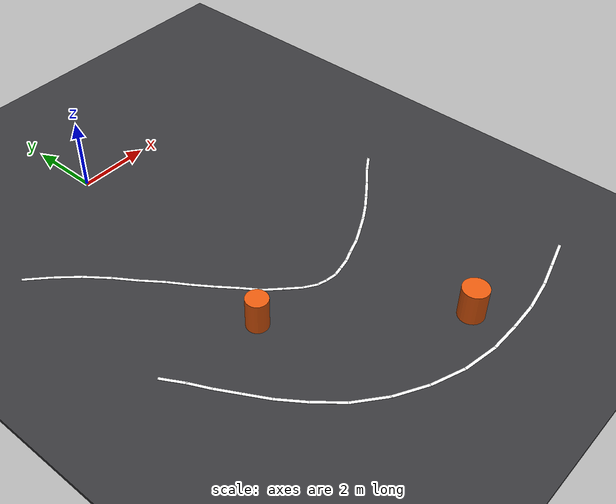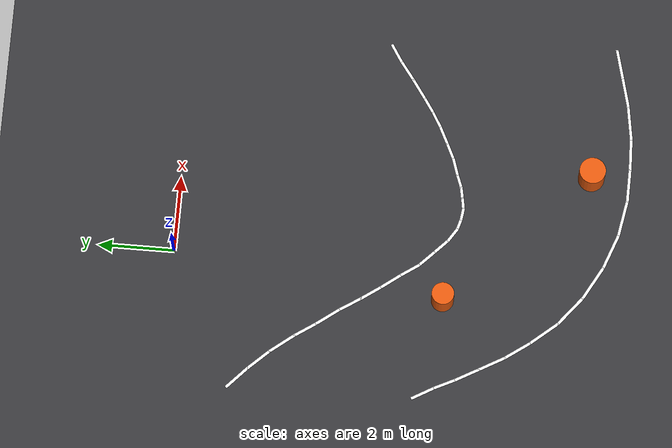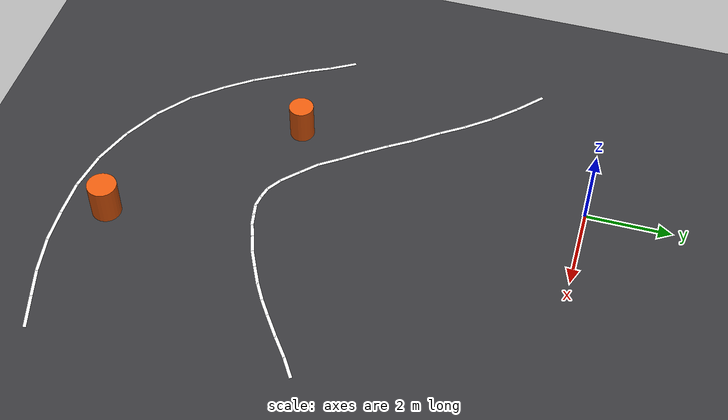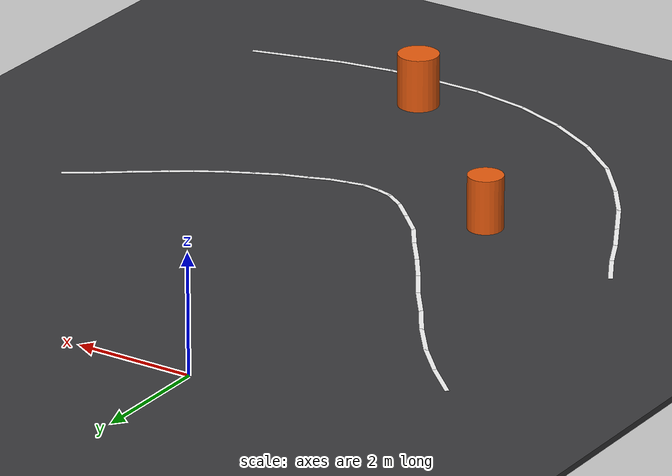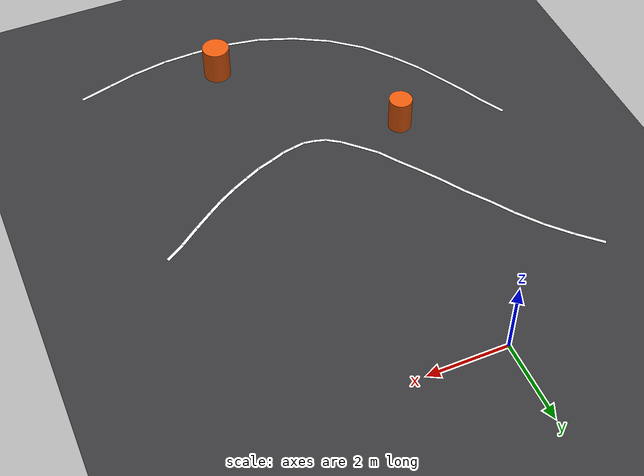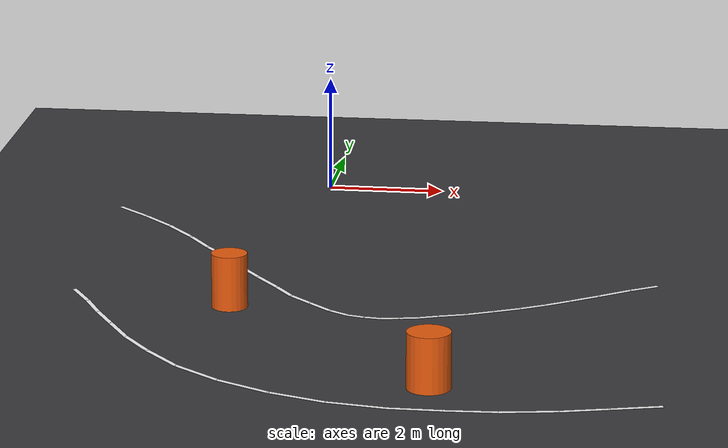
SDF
<sdf version="1.9">
 <world name="igvc_course">
  <model name="ground">
   <static>true</static>
   <pose>1.1853 1.2982 -0.05 0 0 0</pose>
   <link name="link">
    <collision name="collision">
     <geometry><box><size>39.54 33.62 0.1</size></box></geometry>
     <surface><friction><ode><mu>1.0</mu><mu2>1.0</mu2></ode></friction></surface>
    </collision>
    <visual name="visual">
     <geometry><box><size>39.54 33.62 0.1</size></box></geometry>
     <material><ambient>0.18 0.18 0.19 1</ambient><diffuse>0.22 0.22 0.23 1</diffuse></material>
    </visual>
   </link>
  </model>
  <model name="lane_left_89">
   <static>true</static>
   <pose>6.0124 -11.2411 0.0025 0 0 -2.87998</pose>
   <link name="link">
    <visual name="visual">
     <geometry><box><size>0.8376 0.0762 0.0050</size></box></geometry>
     <material>
      <ambient>0.95 0.95 0.95 1</ambient>
      <diffuse>0.95 0.95 0.95 1</diffuse>
      <specular>0.1 0.1 0.1 1</specular>
      <emissive>0.55 0.55 0.55 1</emissive>
     </material>
    </visual>
   </link>
  </model>
  <model name="lane_left_90">
   <static>true</static>
   <pose>5.2683 -11.4388 0.0025 0 0 -2.88396</pose>
   <link name="link">
    <visual name="visual">
     <geometry><box><size>0.7784 0.0762 0.0050</size></box></geometry>
     <material>
      <ambient>0.95 0.95 0.95 1</ambient>
      <diffuse>0.95 0.95 0.95 1</diffuse>
      <specular>0.1 0.1 0.1 1</specular>
      <emissive>0.55 0.55 0.55 1</emissive>
     </material>
    </visual>
   </link>
  </model>
  <model name="lane_left_91">
   <static>true</static>
   <pose>4.4638 -11.6048 0.0025 0 0 -2.98252</pose>
   <link name="link">
    <visual name="visual">
     <geometry><box><size>0.9425 0.0762 0.0050</size></box></geometry>
     <material>
      <ambient>0.95 0.95 0.95 1</ambient>
      <diffuse>0.95 0.95 0.95 1</diffuse>
      <specular>0.1 0.1 0.1 1</specular>
      <emissive>0.55 0.55 0.55 1</emissive>
     </material>
    </visual>
   </link>
  </model>
  <model name="lane_left_92">
   <static>true</static>
   <pose>3.6072 -11.6917 0.0025 0 0 -3.10442</pose>
   <link name="link">
    <visual name="visual">
     <geometry><box><size>0.8590 0.0762 0.0050</size></box></geometry>
     <material>
      <ambient>0.95 0.95 0.95 1</ambient>
      <diffuse>0.95 0.95 0.95 1</diffuse>
      <specular>0.1 0.1 0.1 1</specular>
      <emissive>0.55 0.55 0.55 1</emissive>
     </material>
    </visual>
   </link>
  </model>
  <model name="lane_left_93">
   <static>true</static>
   <pose>2.7697 -11.7004 0.0025 0 0 3.12633</pose>
   <link name="link">
    <visual name="visual">
     <geometry><box><size>0.8928 0.0762 0.0050</size></box></geometry>
     <material>
      <ambient>0.95 0.95 0.95 1</ambient>
      <diffuse>0.95 0.95 0.95 1</diffuse>
      <specular>0.1 0.1 0.1 1</specular>
      <emissive>0.55 0.55 0.55 1</emissive>
     </material>
    </visual>
   </link>
  </model>
  <model name="lane_left_94">
   <static>true</static>
   <pose>1.8634 -11.6097 0.0025 0 0 2.96762</pose>
   <link name="link">
    <visual name="visual">
     <geometry><box><size>1.0108 0.0762 0.0050</size></box></geometry>
     <material>
      <ambient>0.95 0.95 0.95 1</ambient>
      <diffuse>0.95 0.95 0.95 1</diffuse>
      <specular>0.1 0.1 0.1 1</specular>
      <emissive>0.55 0.55 0.55 1</emissive>
     </material>
    </visual>
   </link>
  </model>
  <model name="lane_left_95">
   <static>true</static>
   <pose>0.9359 -11.3589 0.0025 0 0 2.78591</pose>
   <link name="link">
    <visual name="visual">
     <geometry><box><size>0.9951 0.0762 0.0050</size></box></geometry>
     <material>
      <ambient>0.95 0.95 0.95 1</ambient>
      <diffuse>0.95 0.95 0.95 1</diffuse>
      <specular>0.1 0.1 0.1 1</specular>
      <emissive>0.55 0.55 0.55 1</emissive>
     </material>
    </visual>
   </link>
  </model>
  <model name="lane_left_96">
   <static>true</static>
   <pose>0.0662 -10.9576 0.0025 0 0 2.63325</pose>
   <link name="link">
    <visual name="visual">
     <geometry><box><size>1.0023 0.0762 0.0050</size></box></geometry>
     <material>
      <ambient>0.95 0.95 0.95 1</ambient>
      <diffuse>0.95 0.95 0.95 1</diffuse>
      <specular>0.1 0.1 0.1 1</specular>
      <emissive>0.55 0.55 0.55 1</emissive>
     </material>
    </visual>
   </link>
  </model>
  <model name="lane_left_97">
   <static>true</static>
   <pose>-0.7265 -10.4228 0.0025 0 0 2.46204</pose>
   <link name="link">
    <visual name="visual">
     <geometry><box><size>0.9935 0.0762 0.0050</size></box></geometry>
     <material>
      <ambient>0.95 0.95 0.95 1</ambient>
      <diffuse>0.95 0.95 0.95 1</diffuse>
      <specular>0.1 0.1 0.1 1</specular>
      <emissive>0.55 0.55 0.55 1</emissive>
     </material>
    </visual>
   </link>
  </model>
  <model name="lane_left_98">
   <static>true</static>
   <pose>-1.3872 -9.7782 0.0025 0 0 2.26915</pose>
   <link name="link">
    <visual name="visual">
     <geometry><box><size>0.9374 0.0762 0.0050</size></box></geometry>
     <material>
      <ambient>0.95 0.95 0.95 1</ambient>
      <diffuse>0.95 0.95 0.95 1</diffuse>
      <specular>0.1 0.1 0.1 1</specular>
      <emissive>0.55 0.55 0.55 1</emissive>
     </material>
    </visual>
   </link>
  </model>
  <model name="lane_left_99">
   <static>true</static>
   <pose>-1.8964 -9.1231 0.0025 0 0 2.18713</pose>
   <link name="link">
    <visual name="visual">
     <geometry><box><size>0.7996 0.0762 0.0050</size></box></geometry>
     <material>
      <ambient>0.95 0.95 0.95 1</ambient>
      <diffuse>0.95 0.95 0.95 1</diffuse>
      <specular>0.1 0.1 0.1 1</specular>
      <emissive>0.55 0.55 0.55 1</emissive>
     </material>
    </visual>
   </link>
  </model>
  <model name="lane_left_100">
   <static>true</static>
   <pose>-2.2984 -8.4880 0.0025 0 0 2.08185</pose>
   <link name="link">
    <visual name="visual">
     <geometry><box><size>0.7821 0.0762 0.0050</size></box></geometry>
     <material>
      <ambient>0.95 0.95 0.95 1</ambient>
      <diffuse>0.95 0.95 0.95 1</diffuse>
      <specular>0.1 0.1 0.1 1</specular>
      <emissive>0.55 0.55 0.55 1</emissive>
     </material>
    </visual>
   </link>
  </model>
  <model name="lane_left_101">
   <static>true</static>
   <pose>-2.6404 -7.8757 0.0025 0 0 2.07836</pose>
   <link name="link">
    <visual name="visual">
     <geometry><box><size>0.6967 0.0762 0.0050</size></box></geometry>
     <material>
      <ambient>0.95 0.95 0.95 1</ambient>
      <diffuse>0.95 0.95 0.95 1</diffuse>
      <specular>0.1 0.1 0.1 1</specular>
      <emissive>0.55 0.55 0.55 1</emissive>
     </material>
    </visual>
   </link>
  </model>
  <model name="lane_left_102">
   <static>true</static>
   <pose>-2.9286 -7.3241 0.0025 0 0 2.02290</pose>
   <link name="link">
    <visual name="visual">
     <geometry><box><size>0.6247 0.0762 0.0050</size></box></geometry>
     <material>
      <ambient>0.95 0.95 0.95 1</ambient>
      <diffuse>0.95 0.95 0.95 1</diffuse>
      <specular>0.1 0.1 0.1 1</specular>
      <emissive>0.55 0.55 0.55 1</emissive>
     </material>
    </visual>
   </link>
  </model>
  <model name="lane_left_103">
   <static>true</static>
   <pose>-3.2187 -6.7772 0.0025 0 0 2.09047</pose>
   <link name="link">
    <visual name="visual">
     <geometry><box><size>0.6903 0.0762 0.0050</size></box></geometry>
     <material>
      <ambient>0.95 0.95 0.95 1</ambient>
      <diffuse>0.95 0.95 0.95 1</diffuse>
      <specular>0.1 0.1 0.1 1</specular>
      <emissive>0.55 0.55 0.55 1</emissive>
     </material>
    </visual>
   </link>
  </model>
  <model name="lane_right_85">
   <static>true</static>
   <pose>5.8381 -5.3455 0.0025 0 0 -2.56821</pose>
   <link name="link">
    <visual name="visual">
     <geometry><box><size>0.5498 0.0762 0.0050</size></box></geometry>
     <material>
      <ambient>0.95 0.95 0.95 1</ambient>
      <diffuse>0.95 0.95 0.95 1</diffuse>
      <specular>0.1 0.1 0.1 1</specular>
      <emissive>0.55 0.55 0.55 1</emissive>
     </material>
    </visual>
   </link>
  </model>
  <model name="lane_right_86">
   <static>true</static>
   <pose>5.3878 -5.6613 0.0025 0 0 -2.49686</pose>
   <link name="link">
    <visual name="visual">
     <geometry><box><size>0.6272 0.0762 0.0050</size></box></geometry>
     <material>
      <ambient>0.95 0.95 0.95 1</ambient>
      <diffuse>0.95 0.95 0.95 1</diffuse>
      <specular>0.1 0.1 0.1 1</specular>
      <emissive>0.55 0.55 0.55 1</emissive>
     </material>
    </visual>
   </link>
  </model>
  <model name="lane_right_87">
   <static>true</static>
   <pose>4.9167 -6.0059 0.0025 0 0 -2.52351</pose>
   <link name="link">
    <visual name="visual">
     <geometry><box><size>0.6164 0.0762 0.0050</size></box></geometry>
     <material>
      <ambient>0.95 0.95 0.95 1</ambient>
      <diffuse>0.95 0.95 0.95 1</diffuse>
      <specular>0.1 0.1 0.1 1</specular>
      <emissive>0.55 0.55 0.55 1</emissive>
     </material>
    </visual>
   </link>
  </model>
  <model name="lane_right_88">
   <static>true</static>
   <pose>4.5034 -6.2950 0.0025 0 0 -2.54144</pose>
   <link name="link">
    <visual name="visual">
     <geometry><box><size>0.4685 0.0762 0.0050</size></box></geometry>
     <material>
      <ambient>0.95 0.95 0.95 1</ambient>
      <diffuse>0.95 0.95 0.95 1</diffuse>
      <specular>0.1 0.1 0.1 1</specular>
      <emissive>0.55 0.55 0.55 1</emissive>
     </material>
    </visual>
   </link>
  </model>
  <model name="lane_right_89">
   <static>true</static>
   <pose>4.1194 -6.5389 0.0025 0 0 -2.60660</pose>
   <link name="link">
    <visual name="visual">
     <geometry><box><size>0.5182 0.0762 0.0050</size></box></geometry>
     <material>
      <ambient>0.95 0.95 0.95 1</ambient>
      <diffuse>0.95 0.95 0.95 1</diffuse>
      <specular>0.1 0.1 0.1 1</specular>
      <emissive>0.55 0.55 0.55 1</emissive>
     </material>
    </visual>
   </link>
  </model>
  <model name="lane_right_90">
   <static>true</static>
   <pose>3.7064 -6.7645 0.0025 0 0 -2.67797</pose>
   <link name="link">
    <visual name="visual">
     <geometry><box><size>0.4998 0.0762 0.0050</size></box></geometry>
     <material>
      <ambient>0.95 0.95 0.95 1</ambient>
      <diffuse>0.95 0.95 0.95 1</diffuse>
      <specular>0.1 0.1 0.1 1</specular>
      <emissive>0.55 0.55 0.55 1</emissive>
     </material>
    </visual>
   </link>
  </model>
  <model name="lane_right_91">
   <static>true</static>
   <pose>3.2973 -6.9654 0.0025 0 0 -2.69225</pose>
   <link name="link">
    <visual name="visual">
     <geometry><box><size>0.4880 0.0762 0.0050</size></box></geometry>
     <material>
      <ambient>0.95 0.95 0.95 1</ambient>
      <diffuse>0.95 0.95 0.95 1</diffuse>
      <specular>0.1 0.1 0.1 1</specular>
      <emissive>0.55 0.55 0.55 1</emissive>
     </material>
    </visual>
   </link>
  </model>
  <model name="lane_right_92">
   <static>true</static>
   <pose>2.8839 -7.1326 0.0025 0 0 -2.82340</pose>
   <link name="link">
    <visual name="visual">
     <geometry><box><size>0.4819 0.0762 0.0050</size></box></geometry>
     <material>
      <ambient>0.95 0.95 0.95 1</ambient>
      <diffuse>0.95 0.95 0.95 1</diffuse>
      <specular>0.1 0.1 0.1 1</specular>
      <emissive>0.55 0.55 0.55 1</emissive>
     </material>
    </visual>
   </link>
  </model>
  <model name="lane_right_93">
   <static>true</static>
   <pose>2.5078 -7.2649 0.0025 0 0 -2.77779</pose>
   <link name="link">
    <visual name="visual">
     <geometry><box><size>0.3920 0.0762 0.0050</size></box></geometry>
     <material>
      <ambient>0.95 0.95 0.95 1</ambient>
      <diffuse>0.95 0.95 0.95 1</diffuse>
      <specular>0.1 0.1 0.1 1</specular>
      <emissive>0.55 0.55 0.55 1</emissive>
     </material>
    </visual>
   </link>
  </model>
  <model name="lane_right_94">
   <static>true</static>
   <pose>2.2006 -7.3556 0.0025 0 0 -2.94848</pose>
   <link name="link">
    <visual name="visual">
     <geometry><box><size>0.3272 0.0762 0.0050</size></box></geometry>
     <material>
      <ambient>0.95 0.95 0.95 1</ambient>
      <diffuse>0.95 0.95 0.95 1</diffuse>
      <specular>0.1 0.1 0.1 1</specular>
      <emissive>0.55 0.55 0.55 1</emissive>
     </material>
    </visual>
   </link>
  </model>
  <model name="lane_right_95">
   <static>true</static>
   <pose>1.9146 -7.4089 0.0025 0 0 -2.96635</pose>
   <link name="link">
    <visual name="visual">
     <geometry><box><size>0.3308 0.0762 0.0050</size></box></geometry>
     <material>
      <ambient>0.95 0.95 0.95 1</ambient>
      <diffuse>0.95 0.95 0.95 1</diffuse>
      <specular>0.1 0.1 0.1 1</specular>
      <emissive>0.55 0.55 0.55 1</emissive>
     </material>
    </visual>
   </link>
  </model>
  <model name="lane_right_96">
   <static>true</static>
   <pose>1.6271 -7.4151 0.0025 0 0 3.00734</pose>
   <link name="link">
    <visual name="visual">
     <geometry><box><size>0.3274 0.0762 0.0050</size></box></geometry>
     <material>
      <ambient>0.95 0.95 0.95 1</ambient>
      <diffuse>0.95 0.95 0.95 1</diffuse>
      <specular>0.1 0.1 0.1 1</specular>
      <emissive>0.55 0.55 0.55 1</emissive>
     </material>
    </visual>
   </link>
  </model>
  <model name="lane_right_97">
   <static>true</static>
   <pose>1.3474 -7.3572 0.0025 0 0 2.86676</pose>
   <link name="link">
    <visual name="visual">
     <geometry><box><size>0.3216 0.0762 0.0050</size></box></geometry>
     <material>
      <ambient>0.95 0.95 0.95 1</ambient>
      <diffuse>0.95 0.95 0.95 1</diffuse>
      <specular>0.1 0.1 0.1 1</specular>
      <emissive>0.55 0.55 0.55 1</emissive>
     </material>
    </visual>
   </link>
  </model>
  <model name="lane_right_98">
   <static>true</static>
   <pose>1.0485 -7.2116 0.0025 0 0 2.55843</pose>
   <link name="link">
    <visual name="visual">
     <geometry><box><size>0.4273 0.0762 0.0050</size></box></geometry>
     <material>
      <ambient>0.95 0.95 0.95 1</ambient>
      <diffuse>0.95 0.95 0.95 1</diffuse>
      <specular>0.1 0.1 0.1 1</specular>
      <emissive>0.55 0.55 0.55 1</emissive>
     </material>
    </visual>
   </link>
  </model>
  <model name="lane_right_99">
   <static>true</static>
   <pose>0.7110 -6.9353 0.0025 0 0 2.37343</pose>
   <link name="link">
    <visual name="visual">
     <geometry><box><size>0.5248 0.0762 0.0050</size></box></geometry>
     <material>
      <ambient>0.95 0.95 0.95 1</ambient>
      <diffuse>0.95 0.95 0.95 1</diffuse>
      <specular>0.1 0.1 0.1 1</specular>
      <emissive>0.55 0.55 0.55 1</emissive>
     </material>
    </visual>
   </link>
  </model>
  <model name="lane_right_100">
   <static>true</static>
   <pose>0.3511 -6.5827 0.0025 0 0 2.36003</pose>
   <link name="link">
    <visual name="visual">
     <geometry><box><size>0.5592 0.0762 0.0050</size></box></geometry>
     <material>
      <ambient>0.95 0.95 0.95 1</ambient>
      <diffuse>0.95 0.95 0.95 1</diffuse>
      <specular>0.1 0.1 0.1 1</specular>
      <emissive>0.55 0.55 0.55 1</emissive>
     </material>
    </visual>
   </link>
  </model>
  <model name="lane_right_101">
   <static>true</static>
   <pose>0.0157 -6.1790 0.0025 0 0 2.16997</pose>
   <link name="link">
    <visual name="visual">
     <geometry><box><size>0.5714 0.0762 0.0050</size></box></geometry>
     <material>
      <ambient>0.95 0.95 0.95 1</ambient>
      <diffuse>0.95 0.95 0.95 1</diffuse>
      <specular>0.1 0.1 0.1 1</specular>
      <emissive>0.55 0.55 0.55 1</emissive>
     </material>
    </visual>
   </link>
  </model>
  <model name="lane_right_102">
   <static>true</static>
   <pose>-0.3170 -5.7146 0.0025 0 0 2.21217</pose>
   <link name="link">
    <visual name="visual">
     <geometry><box><size>0.6475 0.0762 0.0050</size></box></geometry>
     <material>
      <ambient>0.95 0.95 0.95 1</ambient>
      <diffuse>0.95 0.95 0.95 1</diffuse>
      <specular>0.1 0.1 0.1 1</specular>
      <emissive>0.55 0.55 0.55 1</emissive>
     </material>
    </visual>
   </link>
  </model>
  <model name="lane_right_103">
   <static>true</static>
   <pose>-0.6760 -5.2173 0.0025 0 0 2.18020</pose>
   <link name="link">
    <visual name="visual">
     <geometry><box><size>0.6556 0.0762 0.0050</size></box></geometry>
     <material>
      <ambient>0.95 0.95 0.95 1</ambient>
      <diffuse>0.95 0.95 0.95 1</diffuse>
      <specular>0.1 0.1 0.1 1</specular>
      <emissive>0.55 0.55 0.55 1</emissive>
     </material>
    </visual>
   </link>
  </model>
  <model name="lane_right_104">
   <static>true</static>
   <pose>-1.0273 -4.6916 0.0025 0 0 2.14044</pose>
   <link name="link">
    <visual name="visual">
     <geometry><box><size>0.6854 0.0762 0.0050</size></box></geometry>
     <material>
      <ambient>0.95 0.95 0.95 1</ambient>
      <diffuse>0.95 0.95 0.95 1</diffuse>
      <specular>0.1 0.1 0.1 1</specular>
      <emissive>0.55 0.55 0.55 1</emissive>
     </material>
    </visual>
   </link>
  </model>
  <model name="lane_right_105">
   <static>true</static>
   <pose>-1.4092 -4.1401 0.0025 0 0 2.21008</pose>
   <link name="link">
    <visual name="visual">
     <geometry><box><size>0.7333 0.0762 0.0050</size></box></geometry>
     <material>
      <ambient>0.95 0.95 0.95 1</ambient>
      <diffuse>0.95 0.95 0.95 1</diffuse>
      <specular>0.1 0.1 0.1 1</specular>
      <emissive>0.55 0.55 0.55 1</emissive>
     </material>
    </visual>
   </link>
  </model>
  <model name="lane_right_106">
   <static>true</static>
   <pose>-1.7986 -3.5889 0.0025 0 0 2.16028</pose>
   <link name="link">
    <visual name="visual">
     <geometry><box><size>0.6931 0.0762 0.0050</size></box></geometry>
     <material>
      <ambient>0.95 0.95 0.95 1</ambient>
      <diffuse>0.95 0.95 0.95 1</diffuse>
      <specular>0.1 0.1 0.1 1</specular>
      <emissive>0.55 0.55 0.55 1</emissive>
     </material>
    </visual>
   </link>
  </model>
  <model name="lane_right_107">
   <static>true</static>
   <pose>-2.2137 -3.0176 0.0025 0 0 2.23257</pose>
   <link name="link">
    <visual name="visual">
     <geometry><box><size>0.7963 0.0762 0.0050</size></box></geometry>
     <material>
      <ambient>0.95 0.95 0.95 1</ambient>
      <diffuse>0.95 0.95 0.95 1</diffuse>
      <specular>0.1 0.1 0.1 1</specular>
      <emissive>0.55 0.55 0.55 1</emissive>
     </material>
    </visual>
   </link>
  </model>
  <model name="lane_right_108">
   <static>true</static>
   <pose>-2.6965 -2.4514 0.0025 0 0 2.32282</pose>
   <link name="link">
    <visual name="visual">
     <geometry><box><size>0.7696 0.0762 0.0050</size></box></geometry>
     <material>
      <ambient>0.95 0.95 0.95 1</ambient>
      <diffuse>0.95 0.95 0.95 1</diffuse>
      <specular>0.1 0.1 0.1 1</specular>
      <emissive>0.55 0.55 0.55 1</emissive>
     </material>
    </visual>
   </link>
  </model>
  <model name="lane_right_109">
   <static>true</static>
   <pose>-3.2148 -1.9333 0.0025 0 0 2.38981</pose>
   <link name="link">
    <visual name="visual">
     <geometry><box><size>0.7732 0.0762 0.0050</size></box></geometry>
     <material>
      <ambient>0.95 0.95 0.95 1</ambient>
      <diffuse>0.95 0.95 0.95 1</diffuse>
      <specular>0.1 0.1 0.1 1</specular>
      <emissive>0.55 0.55 0.55 1</emissive>
     </material>
    </visual>
   </link>
  </model>
  <model name="barrel_1">
   <static>true</static>
   <pose>2.8635 -10.7033 0.4500 0 0 0</pose>
   <link name="link">
    <collision name="collision">
     <geometry><cylinder><radius>0.3458</radius><length>0.9</length></cylinder></geometry>
    </collision>
    <visual name="visual">
     <geometry><cylinder><radius>0.3458</radius><length>0.9</length></cylinder></geometry>
     <material><ambient>0.9 0.35 0.05 1</ambient><diffuse>0.9 0.35 0.05 1</diffuse></material>
    </visual>
   </link>
  </model>
  <model name="barrel_2">
   <static>true</static>
   <pose>-0.7308 -7.0802 0.4500 0 0 0</pose>
   <link name="link">
    <collision name="collision">
     <geometry><cylinder><radius>0.2930</radius><length>0.9</length></cylinder></geometry>
    </collision>
    <visual name="visual">
     <geometry><cylinder><radius>0.2930</radius><length>0.9</length></cylinder></geometry>
     <material><ambient>0.9 0.35 0.05 1</ambient><diffuse>0.9 0.35 0.05 1</diffuse></material>
    </visual>
   </link>
  </model>
 </world>
</sdf>
